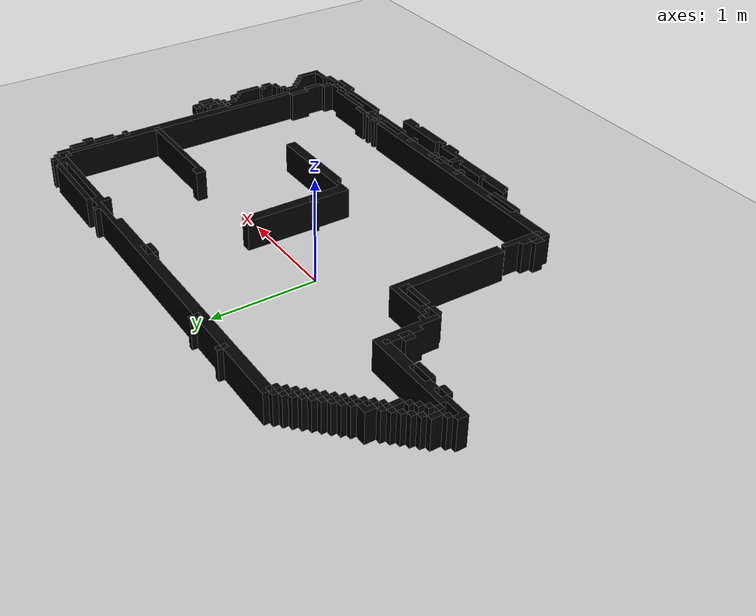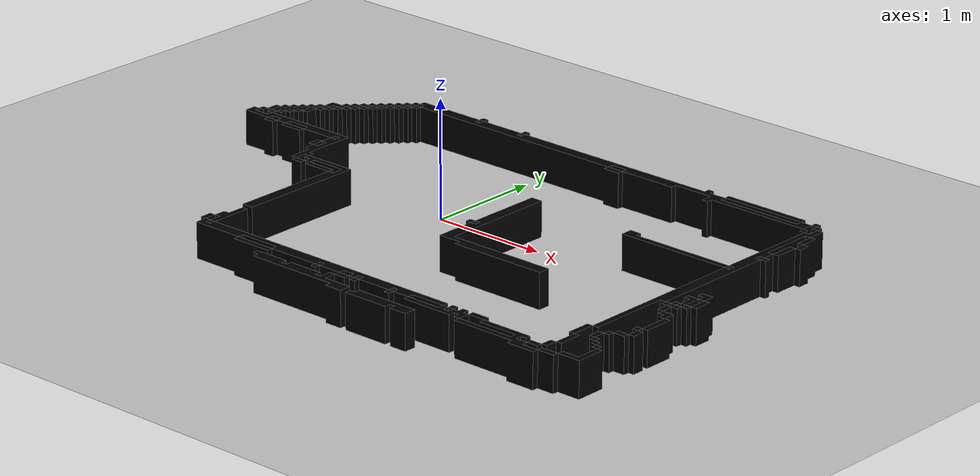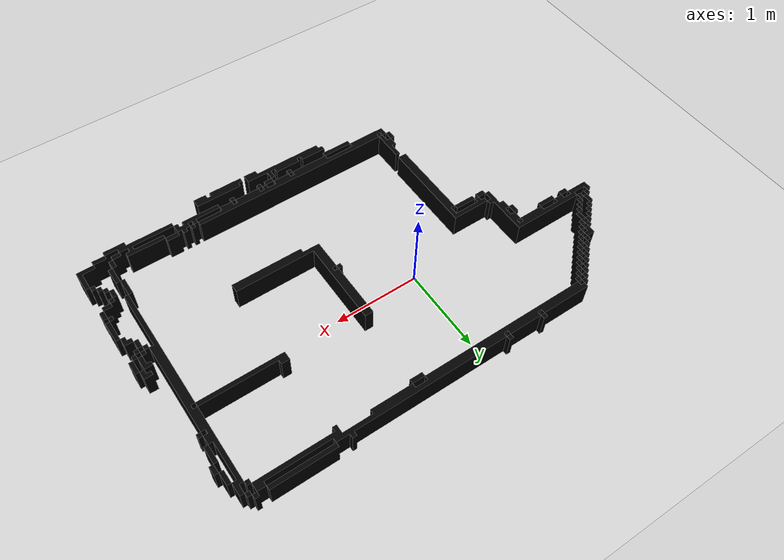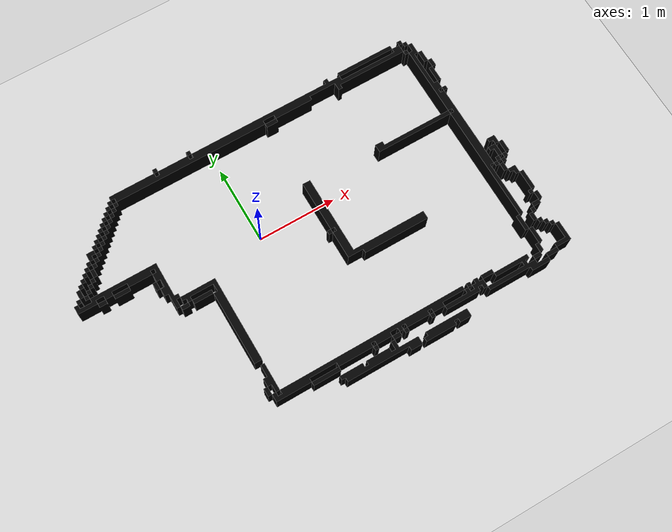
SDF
<sdf version="1.9">
 <world name="default">
  <plugin filename="gz-sim-physics-system" name="gz::sim::systems::Physics"/>
  <plugin filename="gz-sim-sensors-system" name="gz::sim::systems::Sensors">
   <render_engine>ogre2</render_engine>
  </plugin>
  <plugin filename="gz-sim-user-commands-system" name="gz::sim::systems::UserCommands"/>
  <plugin filename="gz-sim-scene-broadcaster-system" name="gz::sim::systems::SceneBroadcaster"/>
  <plugin filename="gz-sim-contact-system" name="gz::sim::systems::Contact"/>
  <light name="sun" type="directional">
   <pose>0 0 10 0 -0 0</pose>
   <diffuse>0.8 0.8 0.8 1</diffuse>
   <specular>0.2 0.2 0.2 1</specular>
   <attenuation>
    <range>1000</range>
    <constant>0.9</constant>
    <linear>0.01</linear>
    <quadratic>0.001</quadratic>
   </attenuation>
   <direction>-0.5 0.1 -0.9</direction>
   <spot><inner_angle>0</inner_angle><outer_angle>0</outer_angle><falloff>0</falloff></spot>
  </light>
  <model name="ground_plane">
   <static>1</static>
   <link name="link">
    <collision name="collision">
     <geometry><plane><normal>0 0 1</normal><size>100 100</size></plane></geometry>
     <surface><friction><ode><mu>100</mu><mu2>50</mu2></ode></friction></surface>
    </collision>
    <visual name="visual">
     <cast_shadows>0</cast_shadows>
     <geometry><plane><normal>0 0 1</normal><size>100 100</size></plane></geometry>
     <material>
      <script><uri>file://media/materials/scripts/gazebo.material</uri><name>Gazebo/Grey</name></script>
     </material>
    </visual>
   </link>
  </model>
  <gravity>0 0 -9.8</gravity>
  <magnetic_field>6e-06 2.3e-05 -4.2e-05</magnetic_field>
  <atmosphere type="adiabatic"/>
  <physics type="ode">
   <max_step_size>0.002</max_step_size>
   <real_time_factor>5</real_time_factor>
   <real_time_update_rate>2500</real_time_update_rate>
  </physics>
  <scene><ambient>0.4 0.4 0.4 1</ambient><background>0.7 0.7 0.7 1</background><shadows>1</shadows></scene>
  <spherical_coordinates>
   <surface_model>EARTH_WGS84</surface_model>
   <latitude_deg>0</latitude_deg>
   <longitude_deg>0</longitude_deg>
   <elevation>0</elevation>
   <heading_deg>0</heading_deg>
  </spherical_coordinates>
  <model name="icra2024">
   <link name="link">
    <inertial>
     <mass>15</mass>
     <inertia><ixx>0</ixx><ixy>0</ixy><ixz>0</ixz><iyy>0</iyy><iyz>0</iyz><izz>0</izz></inertia>
    </inertial>
    <collision name="collision">
     <geometry><mesh><uri>model://icra2024/mesh/map.dae</uri></mesh></geometry>
    </collision>
    <visual name="visual"><geometry><mesh><uri>model://icra2024/mesh/map.dae</uri></mesh></geometry></visual>
   </link>
   <static>1</static>
   <pose>-0.000636 0.003718 0 0 -0 0</pose>
  </model>
 </world>
</sdf>
